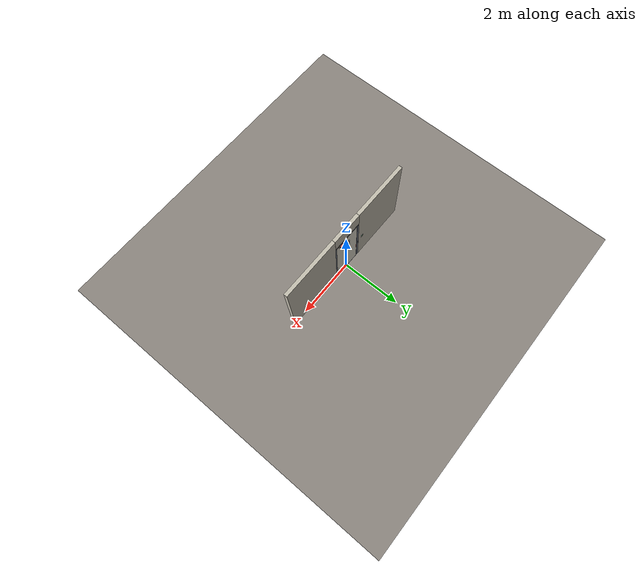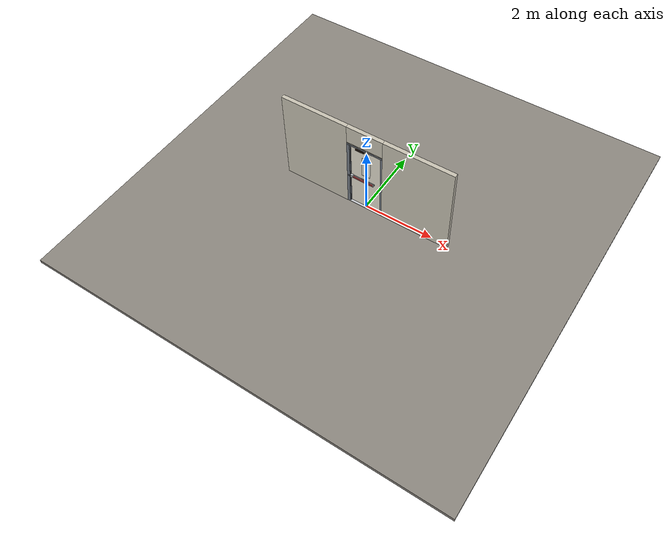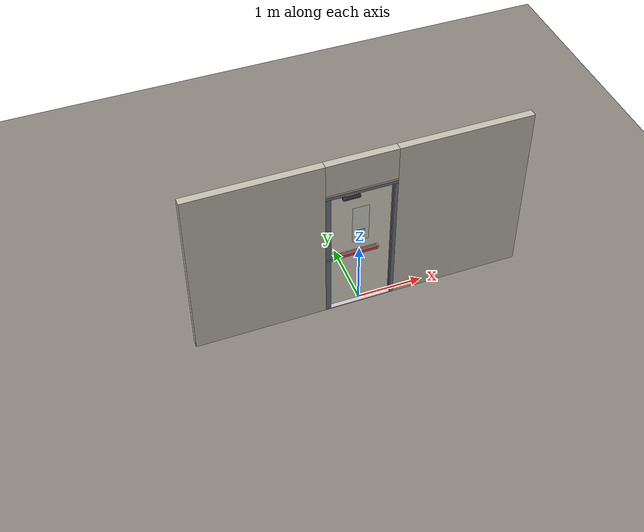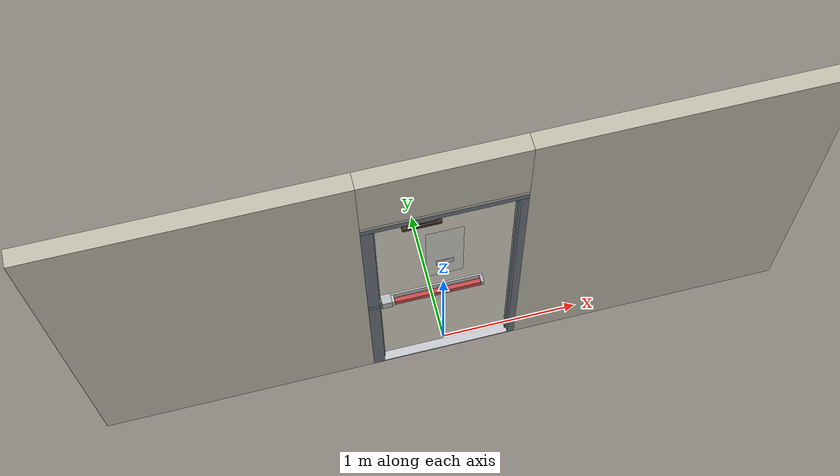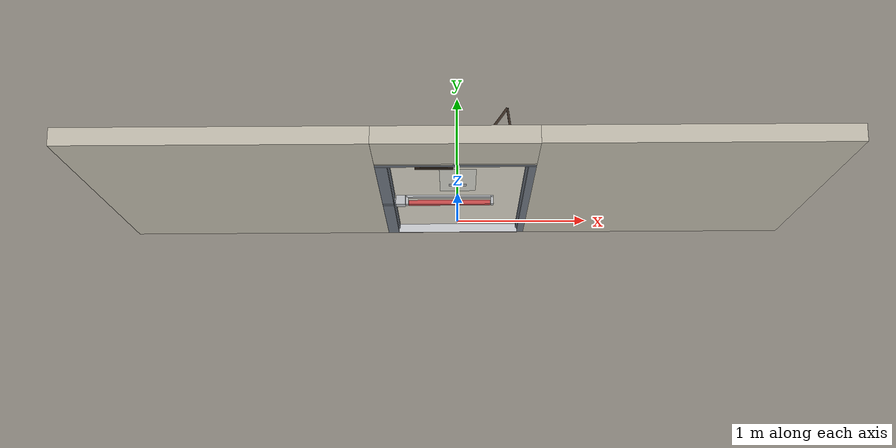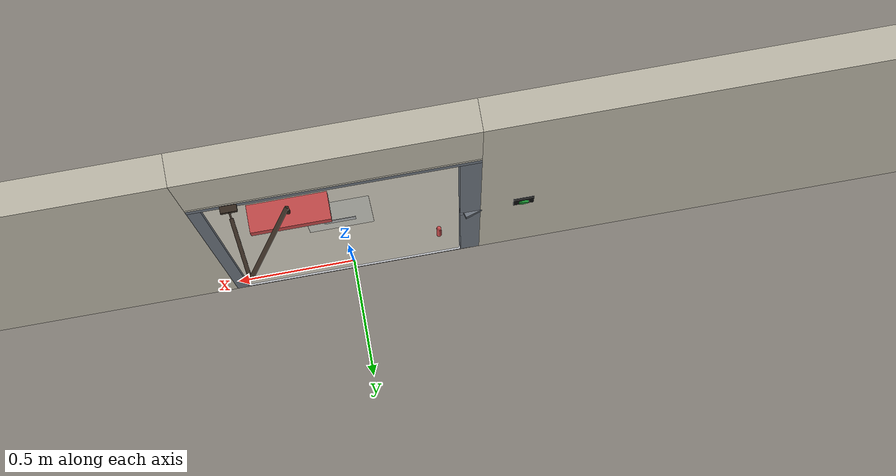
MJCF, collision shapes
<?xml version="1.0" ?>
<mujoco model="db0553_swing_single_full">
  <compiler angle="radian" meshdir="../../hardware" texturedir="../../textures" autolimits="true" inertiafromgeom="false"/>
  <option timestep="0.002" integrator="implicitfast" cone="elliptic" impratio="10" noslip_iterations="3">
    <flag multiccd="enable"/>
  </option>
  <size memory="16M"/>
  <default>
    <geom condim="4" solref="0.005 1" solimp="0.95 0.99 0.001"/>
    <joint solreflimit="0.005 1" solimplimit="0.95 0.99 0.001"/>
    <tendon solreflimit="0.005 1"/>
    <equality solref="0.002 1"/>
  </default>
  <visual>
    <headlight ambient="0.4 0.4 0.4" diffuse="0.7 0.7 0.7" specular="0.2 0.2 0.2"/>
    <quality shadowsize="4096"/>
    <map znear="0.01" zfar="60"/>
  </visual>
  <asset>
    <mesh name="closer_body_fdc4667657" file="closer_body_fdc4667657.obj"/>
    <mesh name="hinge_e22b26c0c1" file="hinge_e22b26c0c1.obj"/>
    <mesh name="hinge_jamb_e1d088f8dc" file="hinge_jamb_e1d088f8dc.obj"/>
    <mesh name="pull_1e5d69a91a" file="pull_1e5d69a91a.obj"/>
    <mesh name="touchbar_pad_2729a067b4" file="touchbar_pad_2729a067b4.obj"/>
    <material name="mat_floor" rgba="0.55 0.53 0.5 1" specular="0.2" shininess="0.15" reflectance="0"/>
    <material name="mat_wall" rgba="0.78 0.76 0.7 1" specular="0.2" shininess="0.1" reflectance="0"/>
    <material name="mat_leaf" rgba="0.9 0.88 0.82 1" specular="0.2" shininess="0.62" reflectance="0"/>
    <material name="mat_glass" rgba="0.85 0.92 0.95 0.25" specular="0.2" shininess="0.95" reflectance="0.1"/>
    <material name="mat_hinge" rgba="0.65 0.66 0.68 1" specular="0.74" shininess="0.5" reflectance="0.36"/>
    <material name="mat_op_stainless" rgba="0.75 0.76 0.77 1" specular="0.8" shininess="0.65" reflectance="0.4"/>
    <material name="mat_bolt" rgba="0.75 0.76 0.77 1" specular="0.8" shininess="0.65" reflectance="0.4"/>
    <material name="mat_maglock" rgba="0.22 0.17 0.13 1" specular="0.8" shininess="0.6" reflectance="0.4"/>
    <material name="mat_frame" rgba="0.45 0.48 0.52 1" specular="0.32" shininess="0.6" reflectance="0.08"/>
    <material name="mat_seal" rgba="0.1 0.1 0.1 1" specular="0.2" shininess="0.1" reflectance="0"/>
    <material name="mat_threshold" rgba="0.8 0.81 0.83 1" specular="0.8" shininess="0.6" reflectance="0.4"/>
    <material name="mat_closer" rgba="0.22 0.17 0.13 1" specular="0.8" shininess="0.6" reflectance="0.4"/>
    <material name="mat_sign" rgba="0.75 0.76 0.77 1" specular="0.8" shininess="0.65" reflectance="0.4"/>
    <material name="mat_wallreader" rgba="0.05 0.05 0.05 1" specular="0.38" shininess="0.3" reflectance="0.12"/>
    <material name="mat_rex" rgba="0.1 0.6 0.2 1" specular="0.2" shininess="0.6" reflectance="0"/>
    <texture name="skybox" type="skybox" builtin="gradient" rgb1="0.6 0.7 0.85" rgb2="0.9 0.92 0.95" width="256" height="256"/>
  </asset>
  <worldbody>
    <light name="sun" pos="1.5 -2.5 4" dir="-0.3 0.5 -0.8" directional="true" diffuse="0.8 0.8 0.8" specular="0.3 0.3 0.3" castshadow="true"/>
    <light name="fill" pos="-1.5 2.5 3" dir="0.3 -0.5 -0.7" directional="true" diffuse="0.35 0.35 0.4" castshadow="false"/>
    <camera name="robot_view" pos="0 -2.666313 1.812087" xyaxes="1 0 0 0 0.26963 0.962964" fovy="52"/>
    <camera name="far_view" pos="0 2.609312 1.812087" xyaxes="-1 0 0 0 -0.26963 0.962964" fovy="52"/>
    <camera name="iso" pos="-2.004737 -2.244263 2.234138" xyaxes="0.741536 -0.670913 0 0.242917 0.268487 0.932151" fovy="46"/>
    <camera name="detail_handle" pos="-0.1865 -0.718 1.296" xyaxes="0.97561 0.219512 0 -0.070934 0.315262 0.94635" fovy="38"/>
    <geom name="floor" type="box" size="6 6 0.05" pos="0 0 -0.05" material="mat_floor" group="0" contype="1" conaffinity="1" friction="0.8 0.005 0.0001" density="2400"/>
    <geom name="wall_left" type="box" size="0.97975 0.0575 1.3735" pos="-1.52025 -0.0285 1.3735" material="mat_wall" group="0" contype="1" conaffinity="1" friction="0.6 0.005 0.0001" density="800"/>
    <geom name="wall_right" type="box" size="0.99475 0.0575 1.3735" pos="1.50525 -0.0285 1.3735" material="mat_wall" group="0" contype="1" conaffinity="1" friction="0.6 0.005 0.0001" density="800"/>
    <geom name="wall_header" type="box" size="0.5255 0.0575 0.26" pos="-0.015 -0.0285 2.487" material="mat_wall" group="0" contype="1" conaffinity="1" friction="0.6 0.005 0.0001" density="800"/>
    <geom name="hinge_0_jamb" type="mesh" mesh="hinge_jamb_e1d088f8dc" pos="0.4575 0.029 0.267" quat="0 0 0 1" material="mat_hinge" group="1" contype="0" conaffinity="0" density="7850"/>
    <geom name="hinge_1_jamb" type="mesh" mesh="hinge_jamb_e1d088f8dc" pos="0.4575 0.029 0.832333" quat="0 0 0 1" material="mat_hinge" group="1" contype="0" conaffinity="0" density="7850"/>
    <geom name="hinge_2_jamb" type="mesh" mesh="hinge_jamb_e1d088f8dc" pos="0.4575 0.029 1.397667" quat="0 0 0 1" material="mat_hinge" group="1" contype="0" conaffinity="0" density="7850"/>
    <geom name="hinge_3_jamb" type="mesh" mesh="hinge_jamb_e1d088f8dc" pos="0.4575 0.029 1.963" quat="0 0 0 1" material="mat_hinge" group="1" contype="0" conaffinity="0" density="7850"/>
    <geom name="leaf_maglock_body" type="box" size="0.125 0.025 0.02" pos="-0.1565 -0.057 2.082" material="mat_maglock" group="0" contype="1" conaffinity="1" friction="0.6 0.005 0.0001" density="2000"/>
    <geom name="leaf_maglock_bracket" type="box" size="0.09 0.025 0.0225" pos="-0.1565 -0.057 2.1245" material="mat_maglock" group="1" contype="0" conaffinity="0" density="7850"/>
    <geom name="jamb_hinge" type="box" size="0.025 0.0575 1.0735" pos="0.4855 -0.0285 1.0735" material="mat_frame" group="0" contype="1" conaffinity="1" friction="0.6 0.005 0.0001" density="300"/>
    <geom name="strike_1016_wall_n" type="box" size="0.04 0.0155 0.02" pos="-0.5005 -0.0705 1.016" material="mat_frame" group="0" contype="1" conaffinity="1" friction="0.6 0.005 0.0001" density="300"/>
    <geom name="strike_1016_wall_p" type="box" size="0.04 0.008 0.02" pos="-0.5005 -0.025 1.016" material="mat_frame" group="0" contype="1" conaffinity="1" friction="0.6 0.005 0.0001" density="300"/>
    <geom name="strike_1016_ramp" type="box" size="0.04 0.034482 0.02" pos="-0.508781 0.0044 1.016" quat="0.989198 0 0 0.146587" material="mat_frame" group="0" contype="1" conaffinity="1" friction="0.12 0.005 0.0001" density="300"/>
    <geom name="strike_1016_back" type="box" size="0.0285 0.011 0.02" pos="-0.512 -0.044 1.016" material="mat_frame" group="0" contype="1" conaffinity="1" friction="0.6 0.005 0.0001" density="300"/>
    <geom name="jamb_strike_0" type="box" size="0.04 0.0575 0.498" pos="-0.5005 -0.0285 0.498" material="mat_frame" group="0" contype="1" conaffinity="1" friction="0.6 0.005 0.0001" density="300"/>
    <geom name="jamb_strike_1" type="box" size="0.04 0.0575 0.5555" pos="-0.5005 -0.0285 1.5915" material="mat_frame" group="0" contype="1" conaffinity="1" friction="0.6 0.005 0.0001" density="300"/>
    <geom name="jamb_head" type="box" size="0.5255 0.0575 0.025" pos="-0.015 -0.0285 2.172" material="mat_frame" group="0" contype="1" conaffinity="1" friction="0.6 0.005 0.0001" density="300"/>
    <geom name="head_stud" type="box" size="0.5255 0.0575 0.015" pos="-0.015 -0.0285 2.212" material="mat_wall" group="0" contype="1" conaffinity="1" friction="0.6 0.005 0.0001" density="500"/>
    <geom name="stop_hinge" type="box" size="0.0055 0.016 1.0735" pos="0.455 -0.0385 1.0735" material="mat_frame" group="0" contype="1" conaffinity="1" friction="0.6 0.005 0.0001" density="300"/>
    <geom name="stop_strike" type="box" size="0.0055 0.016 0.48425" pos="-0.455 -0.0385 0.48425" material="mat_frame" group="0" contype="1" conaffinity="1" friction="0.6 0.005 0.0001" density="300"/>
    <geom name="stop_strike_1" type="box" size="0.0055 0.016 0.54175" pos="-0.455 -0.0385 1.60525" material="mat_frame" group="0" contype="1" conaffinity="1" friction="0.6 0.005 0.0001" density="300"/>
    <geom name="stop_head" type="box" size="0.4605 0.016 0.0055" pos="0 -0.0385 2.1415" material="mat_frame" group="0" contype="1" conaffinity="1" friction="0.6 0.005 0.0001" density="300"/>
    <geom name="seal_hinge" type="box" size="0.004 0.0025 1.0735" pos="0.4575 -0.0245 1.0735" material="mat_seal" group="1" contype="0" conaffinity="0" density="1100"/>
    <geom name="seal_strike" type="box" size="0.004 0.0025 0.48425" pos="-0.4575 -0.0245 0.48425" material="mat_seal" group="1" contype="0" conaffinity="0" density="1100"/>
    <geom name="seal_strike_1" type="box" size="0.004 0.0025 0.54175" pos="-0.4575 -0.0245 1.60525" material="mat_seal" group="1" contype="0" conaffinity="0" density="1100"/>
    <geom name="seal_head" type="box" size="0.4405 0.0025 0.008" pos="0 -0.0245 2.135" material="mat_seal" group="1" contype="0" conaffinity="0" density="1100"/>
    <geom name="threshold" type="box" size="0.5105 0.0575 0.0065" pos="0 -0.0285 0.0065" material="mat_threshold" group="0" contype="1" conaffinity="1" friction="0.5 0.005 0.0001" density="2700"/>
    <geom name="closer_bracket" type="box" size="0.03 0.012 0.014" pos="0.3605 0.041 2.177" material="mat_closer" group="1" contype="0" conaffinity="0" density="2700"/>
    <geom name="rex_plate" type="box" size="0.04 0.003 0.06" pos="-0.7105 0.032 1.1" material="mat_wallreader" group="1" contype="0" conaffinity="0" density="1000"/>
    <site name="approach_point" pos="0 -1.5 0" quat="1 0 0 0" size="0.05" rgba="0.2 0.9 0.2 0.5" group="4"/>
    <site name="goal_point" pos="0 1.5 0" quat="1 0 0 0" size="0.05" rgba="0.2 0.9 0.2 0.5" group="4"/>
    <site name="door_plane_center" pos="0 0 1.0735" quat="1 0 0 0" size="0.02" rgba="0.2 0.9 0.2 0.5" group="4"/>
    <body name="rex_button" pos="-0.7105 0.035 1.1">
      <inertial pos="0 0.004 0" mass="0.010053" quat="0 0 0.707107 -0.707107" diaginertia="0.000001059 0.000001059 0.000002011"/>
      <joint name="rex_button_slide" type="slide" axis="0 -1 0" limited="true" range="0 0.004" damping="1" stiffness="1500" springref="-0.004" armature="0.1"/>
      <geom name="rex_button_geom" type="cylinder" size="0.02 0.004" pos="0 0.004 0" quat="0.707107 -0.707107 0 0" material="mat_rex" group="0" contype="1" conaffinity="1" friction="0.6 0.005 0.0001" density="1000"/>
    </body>
    <body name="leaf" pos="0.4605 0 0">
      <inertial pos="-0.431955 0.013628 1.283788" mass="60.601102" quat="0.516904 -0.516405 -0.49544 -0.46976" diaginertia="3.838293219 26.701533872 30.424194505"/>
      <joint name="leaf_hinge" type="hinge" axis="0 0 -1" pos="-0.003 0.029 0" limited="true" range="0 1.745329" solreflimit="0.02 1" damping="12.268966" frictionloss="3.482376" stiffness="15.673579" springref="-1.79155" armature="0.02"/>
      <geom name="leaf_slab" type="box" size="0.457 0.022 1.063" pos="-0.46 0 1.08" material="mat_leaf" group="0" contype="1" conaffinity="1" friction="0.4 0.005 0.0001" density="1"/>
      <geom name="leaf_glass_0" type="box" size="0.125 0.0228 0.3189" pos="-0.46 0 1.5052" material="mat_glass" group="1" contype="0" conaffinity="0" density="1"/>
      <geom name="hinge_0" type="mesh" mesh="hinge_e22b26c0c1" pos="-0.003 0.029 0.267" quat="0 0 0 1" material="mat_hinge" group="1" contype="0" conaffinity="0" density="7850"/>
      <geom name="hinge_1" type="mesh" mesh="hinge_e22b26c0c1" pos="-0.003 0.029 0.832333" quat="0 0 0 1" material="mat_hinge" group="1" contype="0" conaffinity="0" density="7850"/>
      <geom name="hinge_2" type="mesh" mesh="hinge_e22b26c0c1" pos="-0.003 0.029 1.397667" quat="0 0 0 1" material="mat_hinge" group="1" contype="0" conaffinity="0" density="7850"/>
      <geom name="hinge_3" type="mesh" mesh="hinge_e22b26c0c1" pos="-0.003 0.029 1.963" quat="0 0 0 1" material="mat_hinge" group="1" contype="0" conaffinity="0" density="7850"/>
      <geom name="leaf_exit_device_rail" type="box" size="0.31705 0.006 0.025" pos="-0.51995 -0.028 1.016" material="mat_op_stainless" group="0" contype="1" conaffinity="1" friction="0.6 0.005 0.0001" density="3000"/>
      <geom name="leaf_exit_device_rail_end_n" type="box" size="0.01 0.0325 0.025" pos="-0.827 -0.0545 1.016" material="mat_op_stainless" group="0" contype="1" conaffinity="1" friction="0.6 0.005 0.0001" density="3000"/>
      <geom name="leaf_exit_device_rail_end_p" type="box" size="0.01 0.0325 0.025" pos="-0.2129 -0.0545 1.016" material="mat_op_stainless" group="0" contype="1" conaffinity="1" friction="0.6 0.005 0.0001" density="3000"/>
      <geom name="leaf_exit_device_case" type="box" size="0.034 0.034125 0.0375" pos="-0.871 -0.056125 1.016" material="mat_op_stainless" group="0" contype="1" conaffinity="1" friction="0.6 0.005 0.0001" density="3000"/>
      <geom name="leaf_far_pull_p" type="mesh" mesh="pull_1e5d69a91a" pos="-0.827 0.022 1.016" quat="0 0 0.707107 0.707107" material="mat_op_stainless" group="1" contype="0" conaffinity="0" density="3000"/>
      <geom name="leaf_far_pull_col_p" type="capsule" size="0.0095 0.08" pos="-0.827 0.082 1.016" material="mat_op_stainless" group="3" contype="1" conaffinity="1" rgba="0.8 0.3 0.3 0.25" friction="0.7 0.01 0.0001" density="3000"/>
      <geom name="leaf_maglock_armature" type="box" size="0.09 0.005 0.02" pos="-0.617 -0.027 2.082" material="mat_maglock" group="1" contype="0" conaffinity="0" density="7800"/>
      <geom name="closer_body" type="mesh" mesh="closer_body_fdc4667657" pos="-0.3 0.022 2.046" quat="0 0 0.707107 0.707107" material="mat_closer" group="1" contype="0" conaffinity="0" density="2000"/>
      <geom name="closer_body_col" type="box" size="0.145 0.05 0.035" pos="-0.3 0.072 2.046" material="mat_closer" group="3" contype="1" conaffinity="1" rgba="0.8 0.3 0.3 0.25" friction="0.6 0.005 0.0001" density="2000"/>
      <geom name="closer_pinion_shaft" type="cylinder" size="0.008 0.0655" pos="-0.3 0.072 2.1115" material="mat_closer" group="1" contype="0" conaffinity="0" density="2700"/>
      <geom name="sign_push" type="box" size="0.06 0.001 0.03" pos="-0.46 -0.023 1.367" material="mat_sign" group="2" contype="0" conaffinity="0" density="7900"/>
      <geom name="sign_pull" type="box" size="0.06 0.001 0.03" pos="-0.46 0.023 1.367" material="mat_sign" group="2" contype="0" conaffinity="0" density="7900"/>
      <site name="leaf_far_pull_grip_p" pos="-0.827 0.082 1.016" quat="1 0 0 0" size="0.012" rgba="0.2 0.9 0.2 0.5" group="4"/>
      <site name="leaf_edge_mid" pos="-0.917 0 1.063" quat="1 0 0 0" size="0.02" rgba="0.2 0.9 0.2 0.5" group="4"/>
      <body name="leaf_exit_device" pos="-0.51995 -0.022 1.016">
        <inertial pos="0 -0.05 0" mass="4.76361" quat="0 0 -0.707107 0.707107" diaginertia="0.00116113 0.137653089 0.138099678"/>
        <joint name="leaf_exit_device_slide" type="slide" axis="0 1 0" limited="true" range="0 0.016" damping="153.575154" frictionloss="0.5" stiffness="1200" springref="-0.015" armature="0.15"/>
        <geom name="leaf_exit_device_pad" type="mesh" mesh="touchbar_pad_2729a067b4" pos="0 0 0" quat="0 0 -0.707107 0.707107" material="mat_op_stainless" group="1" contype="0" conaffinity="0" density="3000"/>
        <geom name="leaf_exit_device_pad_col" type="box" size="0.29405 0.015 0.0225" pos="0 -0.05 0" material="mat_op_stainless" group="3" contype="1" conaffinity="1" rgba="0.8 0.3 0.3 0.25" friction="0.8 0.01 0.0001" density="3000"/>
        <site name="leaf_exit_device_push" pos="0 -0.065 0" quat="1 0 0 0" size="0.015" rgba="0.2 0.9 0.2 0.5" group="4"/>
      </body>
      <body name="leaf_latch_bolt" pos="-0.917 -0.044 1.016">
        <inertial pos="0.0055 0 0" mass="0.102826" quat="0.92388 0.382683 0 0" diaginertia="0.000004365 0.000018287 0.000018287"/>
        <joint name="leaf_latch_bolt_slide" type="slide" axis="1 0 0" limited="true" range="0 0.019" damping="2" frictionloss="0.3" stiffness="800" springref="-0.01" armature="0.1"/>
        <geom name="leaf_latch_bolt_capsule" type="capsule" size="0.0095 0.015" pos="0.0055 0 0" quat="0.707107 0 -0.707107 0" material="mat_bolt" group="0" contype="1" conaffinity="1" friction="0.2 0.005 0.0001" density="8500"/>
      </body>
      <body name="closer_arm_main" pos="-0.3 0.072 2.177" quat="0.890947 0 0 0.454107">
        <inertial pos="0.14 0 0" mass="0.12096" quat="1 0 0 0" diaginertia="0.000003588 0.00079128 0.000792852"/>
        <joint name="closer_pinion" type="hinge" axis="0 0 1" limited="false" damping="0.01" armature="0.002"/>
        <geom name="closer_arm_main_geom" type="box" size="0.14 0.008 0.005" pos="0.14 0 0" material="mat_closer" group="1" contype="0" conaffinity="0" density="2700"/>
        <body name="closer_arm_fore" pos="0.28 0 0" quat="0.373215 0 0 -0.927745">
          <inertial pos="0.128088 0 0" mass="0.076531" quat="1 0 0 0" diaginertia="0.000001771 0.000437665 0.000438201"/>
          <joint name="closer_elbow" type="hinge" axis="0 0 1" limited="false" damping="0.01" armature="0.002"/>
          <geom name="closer_arm_fore_geom" type="box" size="0.1125 0.007 0.004" pos="0.1125 0 0" material="mat_closer" group="1" contype="0" conaffinity="0" density="2700"/>
          <geom name="closer_fore_neck" type="box" size="0.0175 0.003 0.003" pos="0.2425 0 0" material="mat_closer" group="1" contype="0" conaffinity="0" density="2700"/>
          <geom name="closer_fore_pivot" type="cylinder" size="0.005 0.012" pos="0.26 0 0" material="mat_closer" group="1" contype="0" conaffinity="0" density="2700"/>
        </body>
      </body>
    </body>
  </worldbody>
  <tendon>
    <fixed name="leaf_latch_bolt_coupling" limited="true" range="0 10">
      <joint joint="leaf_latch_bolt_slide" coef="1"/>
      <joint joint="leaf_exit_device_slide" coef="-1.357143"/>
    </fixed>
  </tendon>
  <equality>
    <weld name="leaf_maglock" body1="leaf" body2="world" active="true"/>
    <connect name="closer_arm_connect" body1="closer_arm_fore" body2="world" anchor="0.26 0 0" active="true"/>
  </equality>
  <contact>
    <exclude body1="closer_arm_main" body2="leaf"/>
    <exclude body1="closer_arm_fore" body2="leaf"/>
    <exclude body1="closer_arm_main" body2="closer_arm_fore"/>
  </contact>
  <sensor>
    <jointpos name="leaf_hinge_pos" joint="leaf_hinge"/>
    <jointvel name="leaf_hinge_vel" joint="leaf_hinge"/>
    <jointpos name="leaf_exit_device_slide_pos" joint="leaf_exit_device_slide"/>
    <jointvel name="leaf_exit_device_slide_vel" joint="leaf_exit_device_slide"/>
    <jointpos name="leaf_latch_bolt_slide_pos" joint="leaf_latch_bolt_slide"/>
    <jointvel name="leaf_latch_bolt_slide_vel" joint="leaf_latch_bolt_slide"/>
    <jointpos name="rex_button_slide_pos" joint="rex_button_slide"/>
    <jointvel name="rex_button_slide_vel" joint="rex_button_slide"/>
  </sensor>
</mujoco>
